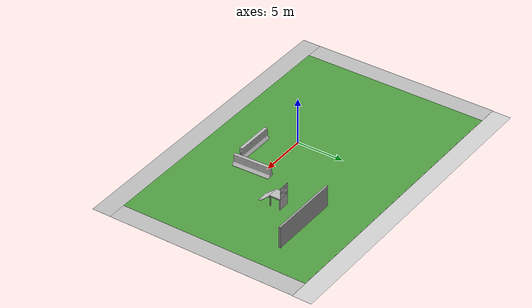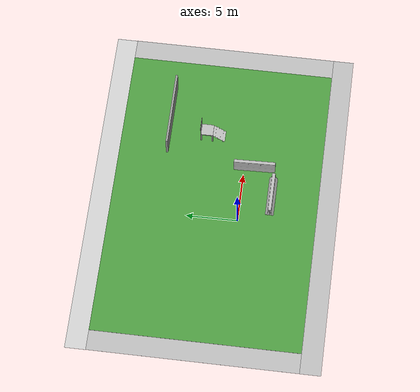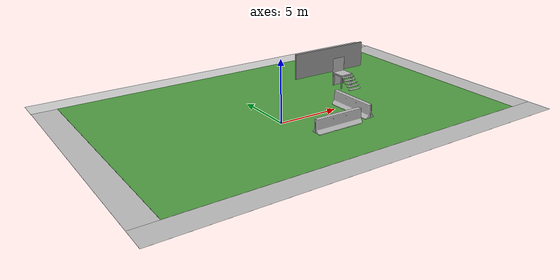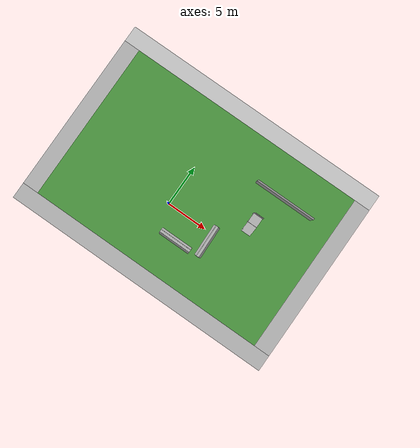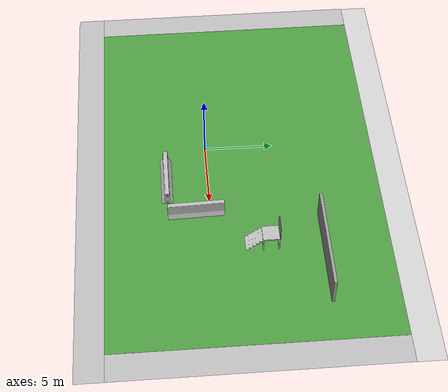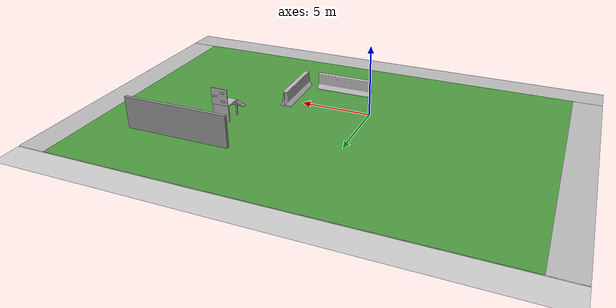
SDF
<sdf version="1.4">
 <world name="default">
  <light name="sun" type="directional">
   <pose>0 0 10 0 -0 0</pose>
   <diffuse>0.8 0.8 0.8 1</diffuse>
   <specular>0.2 0.2 0.2 1</specular>
   <attenuation>
    <range>1000</range>
    <constant>0.9</constant>
    <linear>0.01</linear>
    <quadratic>0.001</quadratic>
   </attenuation>
   <direction>-0.5 0.1 -0.9</direction>
  </light>
  <physics type="ode">
   <max_step_size>0.001</max_step_size>
   <real_time_factor>1</real_time_factor>
   <real_time_update_rate>1000</real_time_update_rate>
   <gravity>0 0 -9.8</gravity>
  </physics>
  <scene><ambient>0.4 0.4 0.4 1</ambient><background>0.7 0.7 0.7 1</background><shadows>1</shadows></scene>
  <model name="robocup_3Dsim_field_0">
   <pose>2.05927 2.44023 0.0 0 -0 0</pose>
   <static>1</static>
   <link name="RoboCup 3D Simulation Field::field">
    <pose>0 0 0.01 0 -0 0</pose>
    <collision name="collision">
     <geometry><plane><normal>0 0 1</normal><size>30 20</size></plane></geometry>
     <surface><friction><ode><mu>100</mu><mu2>50</mu2></ode></friction></surface>
    </collision>
    <visual name="base1">
     <pose>0 11 0.001 0 -0 0</pose>
     <cast_shadows>0</cast_shadows>
     <geometry><plane><normal>0 0 1</normal><size>34 2</size></plane></geometry>
     <material>
      <script>
       <uri>model://robocup_3Dsim_field/materials/scripts/</uri>
       <uri>model://robocup_3Dsim_field/materials/textures/</uri>
       <name>RoboCup/FieldBorder</name>
      </script>
     </material>
    </visual>
    <visual name="base2">
     <pose>0 -11 0.001 0 -0 0</pose>
     <cast_shadows>0</cast_shadows>
     <geometry><plane><normal>0 0 1</normal><size>34 2</size></plane></geometry>
     <material>
      <script>
       <uri>model://robocup_3Dsim_field/materials/scripts/</uri>
       <uri>model://robocup_3Dsim_field/materials/textures/</uri>
       <name>RoboCup/FieldBorder</name>
      </script>
     </material>
    </visual>
    <visual name="base3">
     <pose>16 0 0.001 0 -0 0</pose>
     <cast_shadows>0</cast_shadows>
     <geometry><plane><normal>0 0 1</normal><size>2 20</size></plane></geometry>
     <material>
      <script>
       <uri>model://robocup_3Dsim_field/materials/scripts/</uri>
       <uri>model://robocup_3Dsim_field/materials/textures/</uri>
       <name>RoboCup/FieldBorder</name>
      </script>
     </material>
    </visual>
    <visual name="base4">
     <pose>-16 0 0.001 0 -0 0</pose>
     <cast_shadows>0</cast_shadows>
     <geometry><plane><normal>0 0 1</normal><size>2 20</size></plane></geometry>
     <material>
      <script>
       <uri>model://robocup_3Dsim_field/materials/scripts/</uri>
       <uri>model://robocup_3Dsim_field/materials/textures/</uri>
       <name>RoboCup/FieldBorder</name>
      </script>
     </material>
    </visual>
    <visual name="carpet">
     <cast_shadows>0</cast_shadows>
     <geometry><plane><normal>0 0 1</normal><size>30 20</size></plane></geometry>
     <material>
      <script>
       <uri>model://robocup_3Dsim_field/materials/scripts/</uri>
       <uri>model://robocup_3Dsim_field/materials/textures/</uri>
       <name>RoboCup/Grass</name>
      </script>
     </material>
    </visual>
   </link>
  </model>
  <model name="grey_wall">
   <static>1</static>
   <link name="link">
    <pose>0 0 0.9 0 -0 0</pose>
    <collision name="collision"><geometry><box><size>7.5 0.2 2.8</size></box></geometry></collision>
    <visual name="visual">
     <cast_shadows>0</cast_shadows>
     <geometry><box><size>7.5 0.2 2.8</size></box></geometry>
     <material>
      <script>
       <uri>model://grey_wall/materials/scripts</uri>
       <uri>model://grey_wall/materials/textures</uri>
       <name>vrc/grey_wall</name>
      </script>
     </material>
    </visual>
    <velocity_decay><linear>0</linear><angular>0</angular></velocity_decay>
   </link>
   <pose>10.402 7.71769 0 0 -0 0</pose>
  </model>
  <model name="jersey_barrier">
   <static>1</static>
   <link name="link">
    <visual name="visual">
     <geometry><mesh><uri>model://jersey_barrier/meshes/jersey_barrier.dae</uri></mesh></geometry>
    </visual>
    <collision name="upright"><geometry><box><size>4.06542 0.3063 1.143</size></box></geometry></collision>
    <collision name="base">
     <pose>0 0 0.032258 0 -0 0</pose>
     <geometry><box><size>4.06542 0.8107 0.064516</size></box></geometry>
    </collision>
    <collision name="base2">
     <pose>0 0 0.1 0 -0 0</pose>
     <geometry><box><size>4.06542 0.65 0.1</size></box></geometry>
    </collision>
    <collision name="base3">
     <pose>0 0 0.2 0 -0 0</pose>
     <geometry><box><size>4.06542 0.5 0.1</size></box></geometry>
    </collision>
    <collision name="left-angle">
     <pose>0 -0.224 0.2401 0.9 -0 0</pose>
     <geometry><box><size>4.06542 0.5 0.064516</size></box></geometry>
    </collision>
    <collision name="right-angle">
     <pose>0 0.224 0.2401 -0.9 0 0</pose>
     <geometry><box><size>4.06542 0.5 0.064516</size></box></geometry>
    </collision>
    <velocity_decay><linear>0</linear><angular>0</angular></velocity_decay>
   </link>
   <pose>3 -3 0 0 -0 0</pose>
  </model>
  <model name="nist_stairs_120">
   <static>1</static>
   <link name="nist_stairs_120_link">
    <collision name="collision">
     <geometry>
      <mesh><uri>model://nist_stairs_120/meshes/nist_stairs_120.dae</uri><scale>1 1 1</scale></mesh>
     </geometry>
    </collision>
    <visual name="visual">
     <geometry>
      <mesh><uri>model://nist_stairs_120/meshes/nist_stairs_120.dae</uri><scale>1 1 1</scale></mesh>
     </geometry>
    </visual>
    <velocity_decay><linear>0</linear><angular>0</angular></velocity_decay>
   </link>
   <pose>9.01164 2.82223 0 0 -0 0</pose>
  </model>
  <model name="nist_maze_wall_240">
   <static>1</static>
   <link name="nist__maze_wall_240_link">
    <collision name="collision">
     <geometry>
      <mesh><uri>model://nist_maze_wall_240/meshes/nist_maze_wall_240.dae</uri><scale>1 1 1</scale></mesh>
     </geometry>
    </collision>
    <visual name="visual">
     <geometry>
      <mesh><uri>model://nist_maze_wall_240/meshes/nist_maze_wall_240.dae</uri><scale>1 1 1</scale></mesh>
     </geometry>
    </visual>
    <velocity_decay><linear>0</linear><angular>0</angular></velocity_decay>
   </link>
   <pose>9 4 0 0 -0 0</pose>
  </model>
  <model name="nist_elevated_floor_120">
   <static>1</static>
   <link name="nist_elevated_floor_120">
    <collision name="collision">
     <geometry>
      <mesh><uri>model://nist_elevated_floor_120/meshes/nist_elevated_floor_120.dae</uri><scale>1 1 1</scale></mesh>
     </geometry>
    </collision>
    <visual name="visual">
     <geometry>
      <mesh><uri>model://nist_elevated_floor_120/meshes/nist_elevated_floor_120.dae</uri><scale>1 1 1</scale></mesh>
     </geometry>
    </visual>
    <velocity_decay><linear>0</linear><angular>0</angular></velocity_decay>
   </link>
   <pose>9 4 0 0 -0 0</pose>
  </model>
  <model name="nist">
   <static>1</static>
   <link name="nist_maze_wall_triple_holes_120_link">
    <collision name="collision">
     <geometry>
      <mesh>
       <uri>model://nist_maze_wall_triple_holes_120/meshes/nist_maze_wall_triple_holes_120.dae</uri>
       <scale>1 1 1</scale>
      </mesh>
     </geometry>
    </collision>
    <visual name="visual">
     <geometry>
      <mesh>
       <uri>model://nist_maze_wall_triple_holes_120/meshes/nist_maze_wall_triple_holes_120.dae</uri>
       <scale>1 1 1</scale>
      </mesh>
     </geometry>
    </visual>
    <velocity_decay><linear>0</linear><angular>0</angular></velocity_decay>
   </link>
   <pose>9.02578 4.02961 1.2 0 -0 0</pose>
  </model>
  <model name="jersey_barrier_0">
   <static>1</static>
   <link name="link">
    <visual name="visual">
     <geometry><mesh><uri>model://jersey_barrier/meshes/jersey_barrier.dae</uri></mesh></geometry>
    </visual>
    <collision name="upright"><geometry><box><size>4.06542 0.3063 1.143</size></box></geometry></collision>
    <collision name="base">
     <pose>0 0 0.032258 0 -0 0</pose>
     <geometry><box><size>4.06542 0.8107 0.064516</size></box></geometry>
    </collision>
    <collision name="base2">
     <pose>0 0 0.1 0 -0 0</pose>
     <geometry><box><size>4.06542 0.65 0.1</size></box></geometry>
    </collision>
    <collision name="base3">
     <pose>0 0 0.2 0 -0 0</pose>
     <geometry><box><size>4.06542 0.5 0.1</size></box></geometry>
    </collision>
    <collision name="left-angle">
     <pose>0 -0.224 0.2401 0.9 -0 0</pose>
     <geometry><box><size>4.06542 0.5 0.064516</size></box></geometry>
    </collision>
    <collision name="right-angle">
     <pose>0 0.224 0.2401 -0.9 0 0</pose>
     <geometry><box><size>4.06542 0.5 0.064516</size></box></geometry>
    </collision>
    <velocity_decay><linear>0</linear><angular>0</angular></velocity_decay>
   </link>
   <pose>6 -1 0 0 -0 1.6</pose>
  </model>
 </world>
</sdf>
